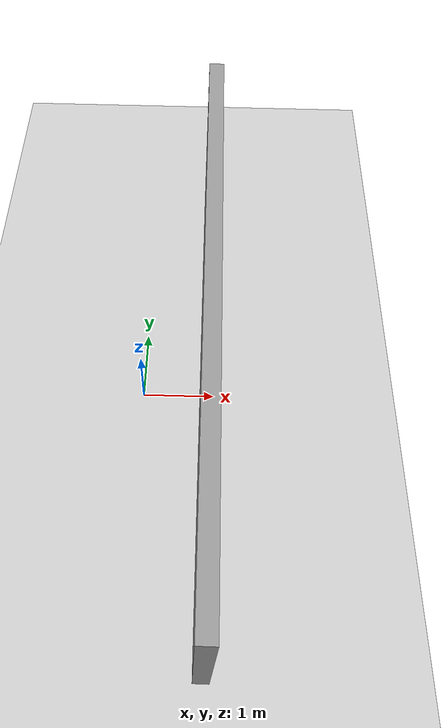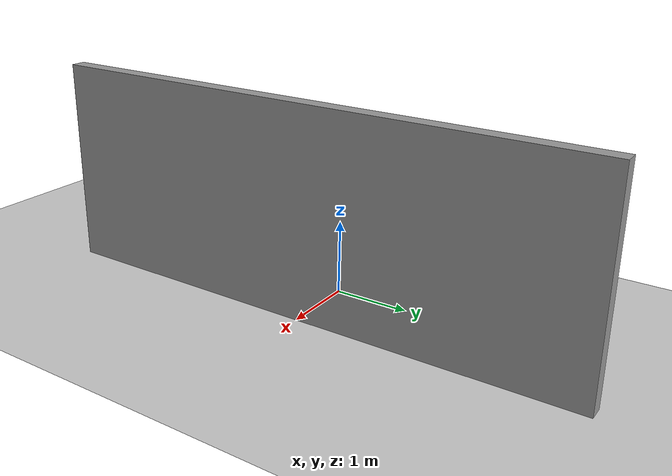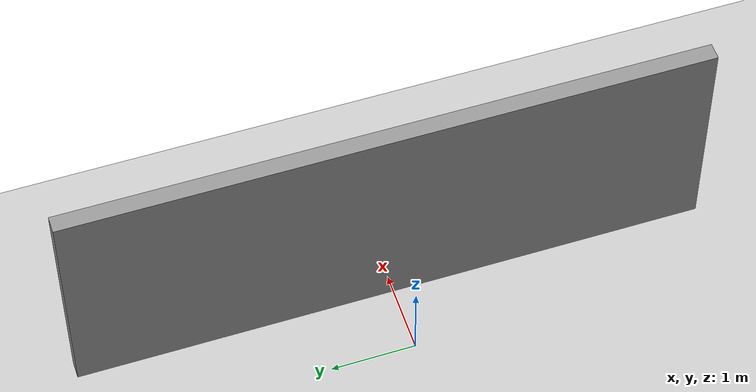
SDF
<?xml version="1.0" ?>
<sdf version="1.5">
  <!-- We use a custom world for the rrbot so that the camera angle is launched correctly -->
	<world name="default">
		<include>
			<uri>model://ground_plane</uri>
		</include>

		<include>
			<uri>model://sun</uri>
		</include>

		<include>
			<uri>model://grey_wall</uri>
			<name>wall</name>
			<pose>0.90 0 0.0 0 0 1.57</pose>
		</include>

		<!-- Focus camera on tall pendulum -->
		<gui fullscreen='0'>
			<camera name='user_camera'>
				<pose>3. -3 3.0 0.000000 0.275643 2.356190</pose>
				<view_controller>orbit</view_controller>
			</camera>
		</gui>
  </world>
</sdf>

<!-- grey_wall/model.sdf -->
<sdf version="1.5">
  <model name="grey_wall">
    <static>true</static>
    <link name="link">
      <pose>0 0 1.4 0 0 0</pose>
      <collision name="collision">
        <geometry>
          <box>
            <size>7.5 0.2 2.8</size>
          </box>
        </geometry>
      </collision>
      <visual name="visual">
        <cast_shadows>false</cast_shadows>
        <geometry>
          <box>
            <size>7.5 0.2 2.8</size>
          </box>
        </geometry>
        <material>
          <script>
            <uri>model://../model_source/models/grey_wall/materials/scripts</uri>
            <uri>model://../model_source/models/grey_wall/materials/textures</uri>
            <name>vrc/grey_wall</name>
          </script>
        </material>
      </visual>
    </link>
  </model>
</sdf>
